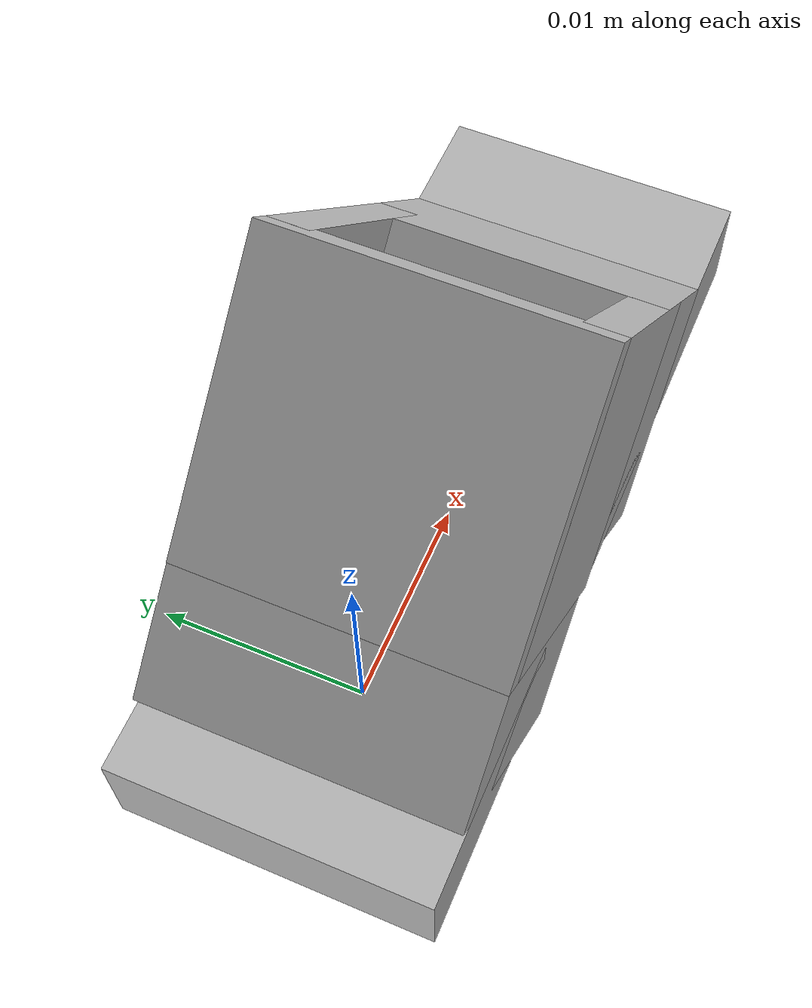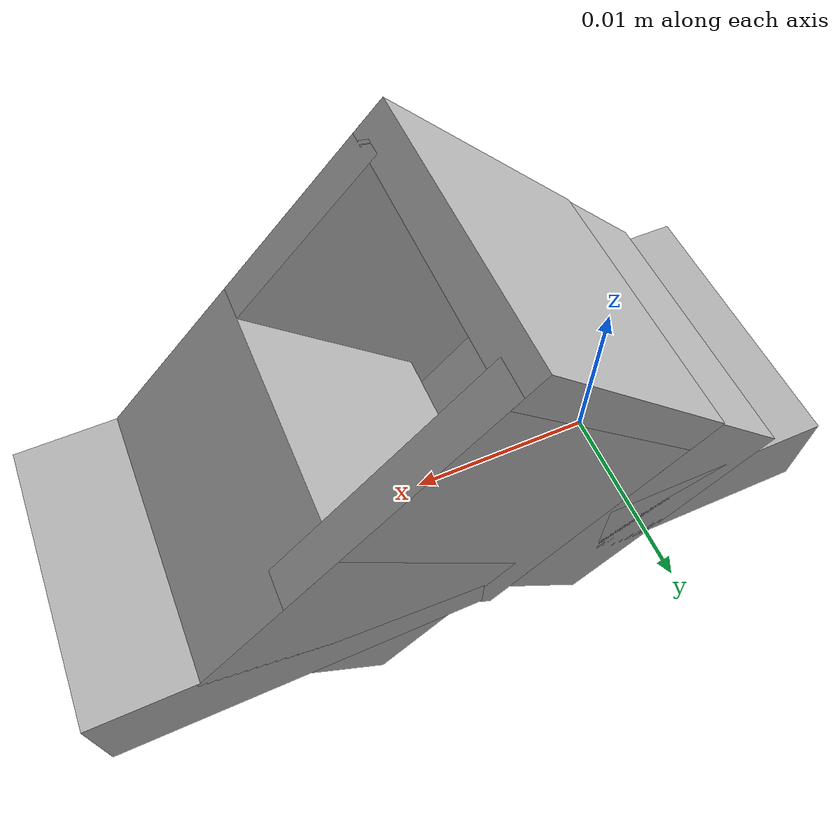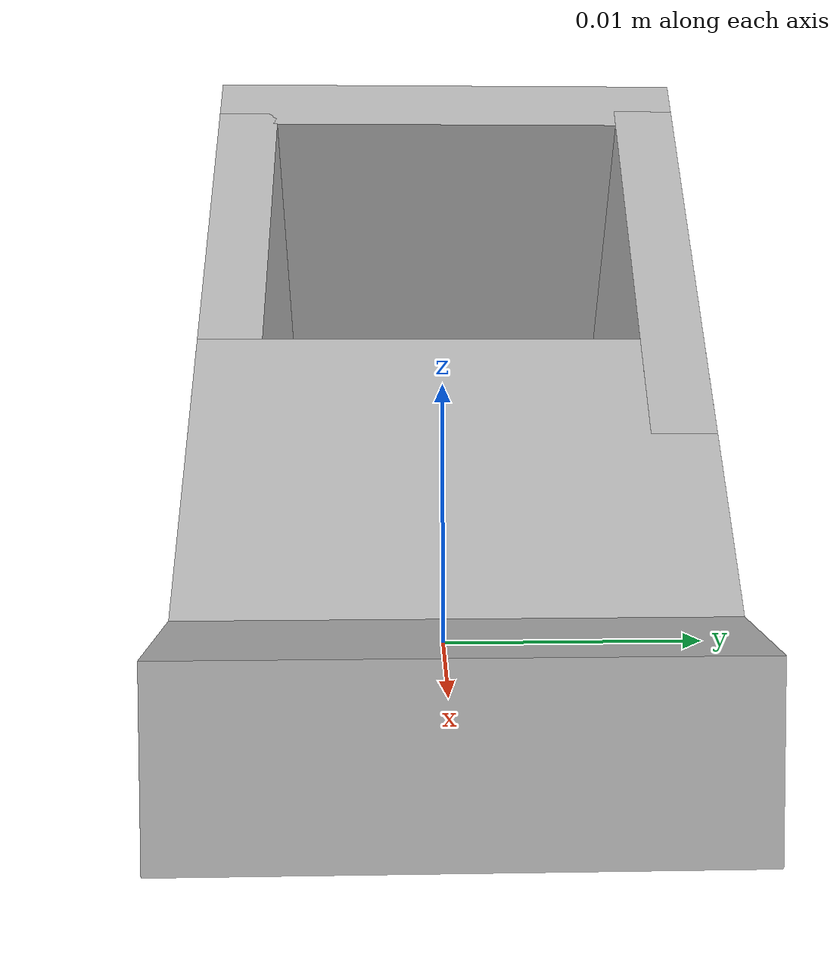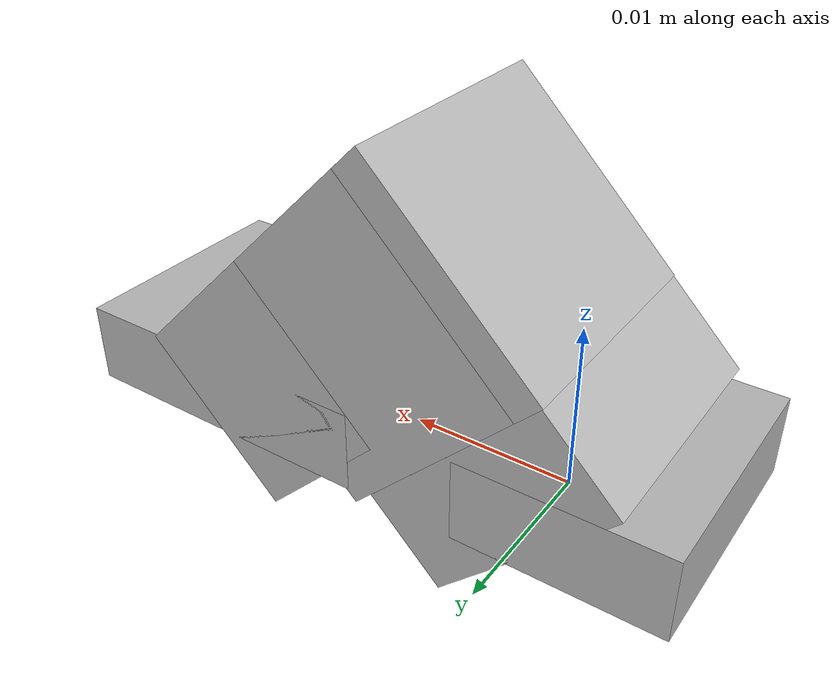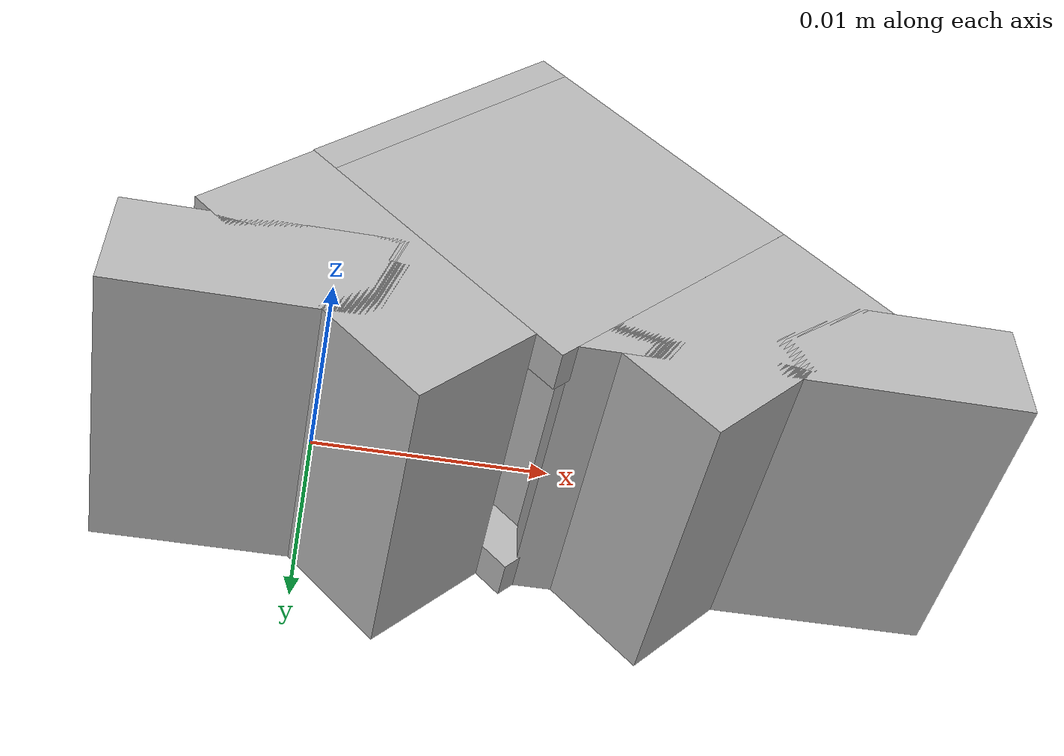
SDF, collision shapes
<?xml version="1.0" ?>
<sdf version="1.9">
  <model name="LC Mount">
    <link name="lc_mount_link">
      <visual name="lc_mount_visual">
        <geometry>
          <mesh>
            <uri>lc_mount_visual.glb</uri>
          </mesh>
        </geometry>
      </visual>
      <collision name="v1015081011_collider_box">
        <pose>0.019353 -0.0 0.0025 0.0 -0.0 0.0</pose>
        <geometry>
          <box>
            <size>0.019294 0.01475 0.005</size>
          </box>
        </geometry>
      </collision>
      <collision name="v1015081011_collider_box.001">
        <pose>-0.00294 -0.0 0.0025 0.0 -0.0 0.0</pose>
        <geometry>
          <box>
            <size>0.01212 0.01475 0.005</size>
          </box>
        </geometry>
      </collision>
      <collision name="v1015081011_collider_box.002">
        <pose>0.004062 -0.0 0.014555 0.0 -0.785398 0.0</pose>
        <geometry>
          <box>
            <size>0.014258 0.01475 0.002</size>
          </box>
        </geometry>
      </collision>
      <collision name="v1015081011_collider_box.003">
        <pose>0.015992 -0.0 0.004149 0.0 -0.785398 0.0</pose>
        <geometry>
          <box>
            <size>0.012103 0.01475 0.010218</size>
          </box>
        </geometry>
      </collision>
      <collision name="v1015081011_collider_box.004">
        <pose>0.001043 -0.0 0.003076 0.0 -0.785398 0.0</pose>
        <geometry>
          <box>
            <size>0.006246 0.01475 0.013841</size>
          </box>
        </geometry>
      </collision>
      <collision name="v1015081011_collider_box.005">
        <pose>0.00925 0.006437 0.009368 0.0 -0.785398 0.0</pose>
        <geometry>
          <box>
            <size>0.014258 0.001875 0.014086</size>
          </box>
        </geometry>
      </collision>
      <collision name="v1015081011_collider_box.006">
        <pose>0.009324 -0.006438 0.009293 0.0 -0.785398 0.0</pose>
        <geometry>
          <box>
            <size>0.014258 0.001875 0.013874</size>
          </box>
        </geometry>
      </collision>
    </link>
  </model>
</sdf>
